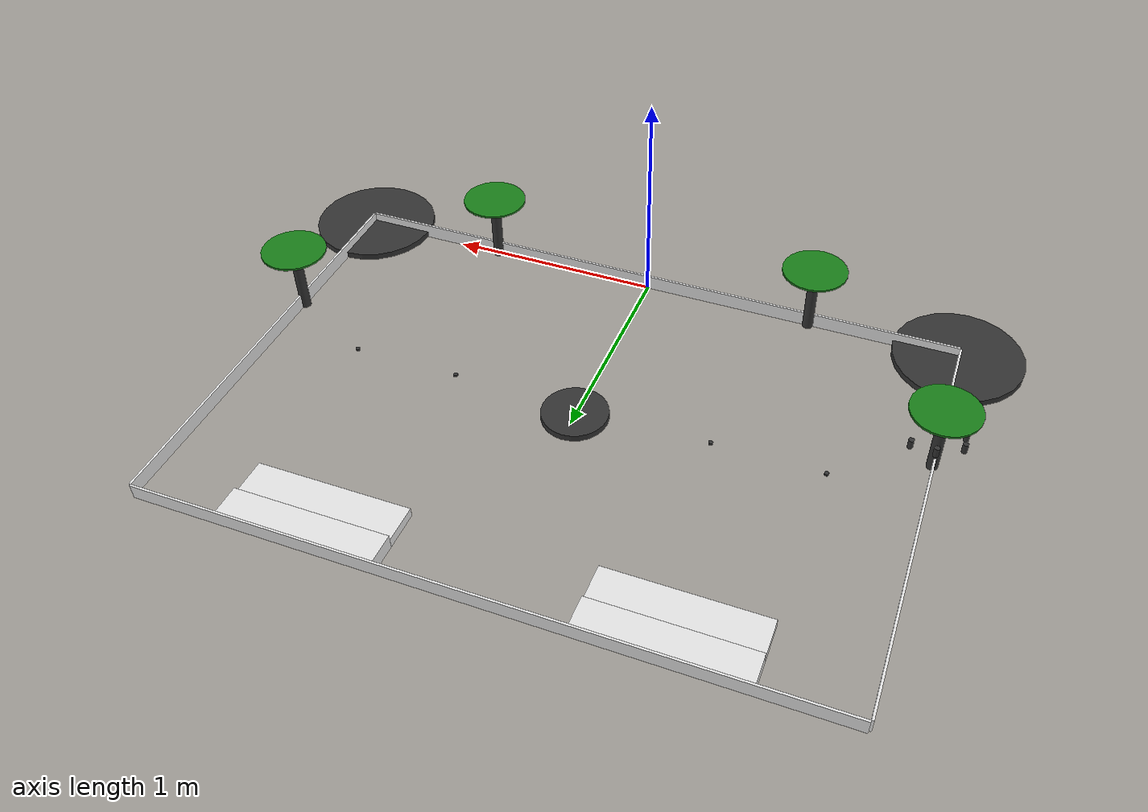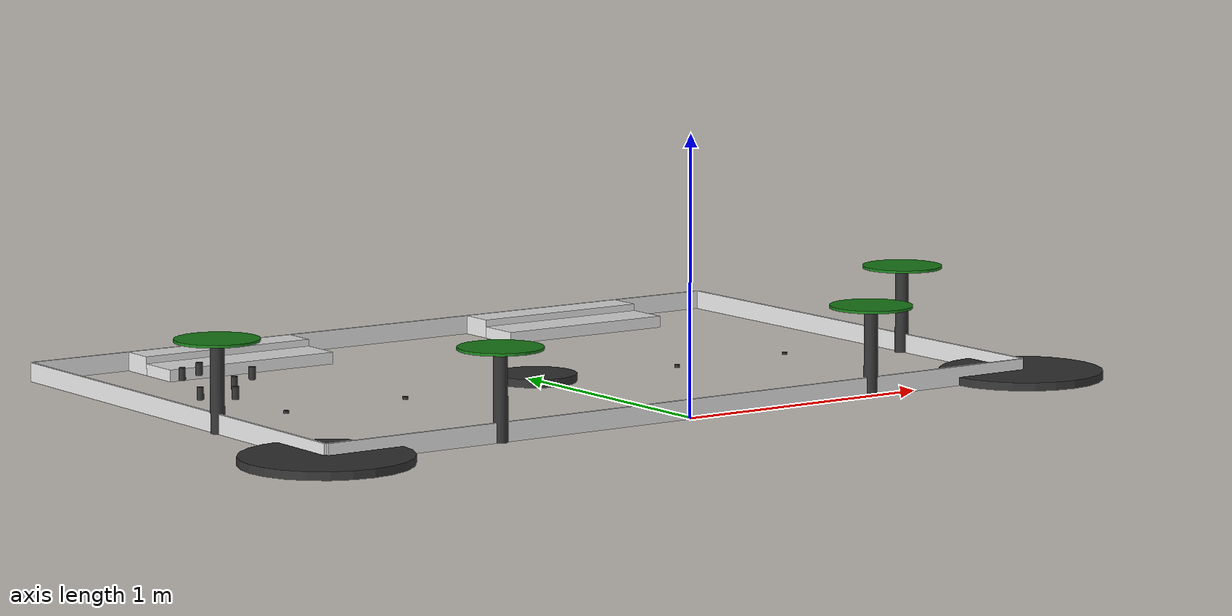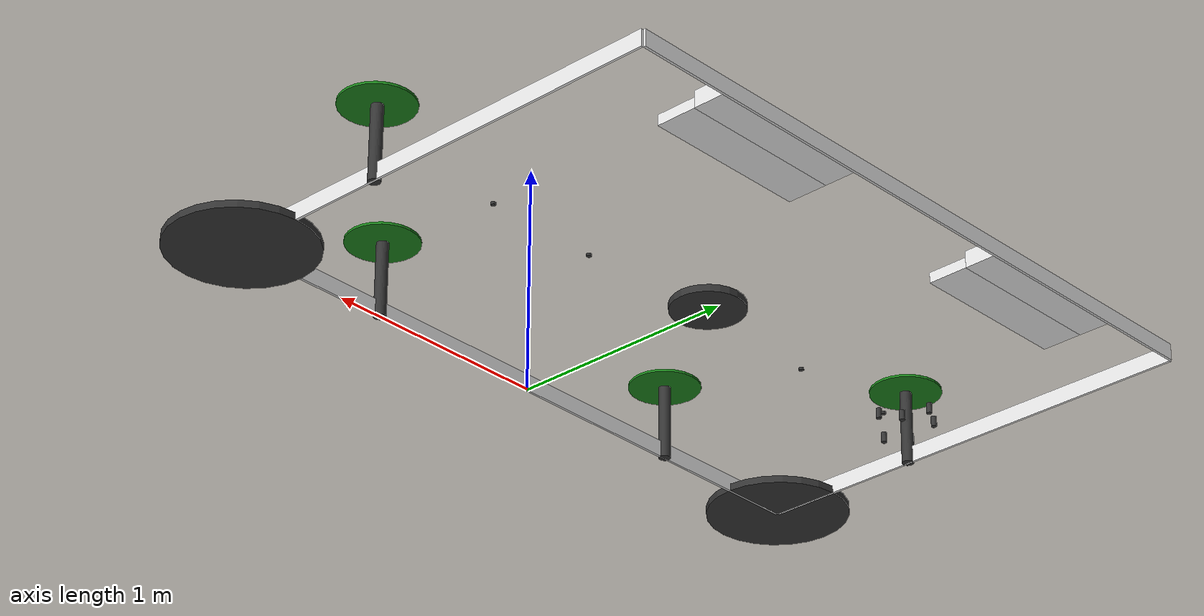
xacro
<?xml version="1.0"?>

<!-- XML namespaces -->
<robot xmlns:sensor="http://playerstage.sourceforge.net/gazebo/xmlschema/#sensor"
       xmlns:controller="http://playerstage.sourceforge.net/gazebo/xmlschema/#controller"
       xmlns:interface="http://playerstage.sourceforge.net/gazebo/xmlschema/#interface"
       xmlns:xacro="http://ros.org/wiki/xacro"
	   name="field2013">

	<xacro:macro name="cyan1">
		<material name="cyan1">
			<color rgba="0 0.9 0.9 1.0"/>
		</material>
	</xacro:macro>

	<xacro:macro name="cyan2">
		<material name="cyan2">
	     <color rgba="0 0.7 0.7 1.0"/>
		</material>
	</xacro:macro>

	<xacro:macro name="cyan3">
		<material name="cyan3">
	     <color rgba="0 0.5 0.5 1.0"/>
		</material>
	</xacro:macro>

	<xacro:macro name="black">
		<material name="black">
			<color rgba="0.1 0.1 0.1 1.0"/>
		</material>
	</xacro:macro>

	<xacro:macro name="black1">
		<material name="black1">
			<color rgba="0.2 0.2 0.2 1.0"/>
		</material>
	</xacro:macro>

	<xacro:macro name="yellow2">
		<material name="yellow2">
			<color rgba="0.8 0.8 0 1.0"/>
		</material>
	</xacro:macro>

	<xacro:macro name="green1">
		<material name="green1">
			<color rgba="0 1 0 1.0"/>
		</material>
	</xacro:macro>

	<xacro:macro name="green2">
		<material name="green2">
			<color rgba="0.1 0.8 0 1.0"/>
		</material>
	</xacro:macro>

	<xacro:macro name="green3">
		<material name="green3">
			<color rgba="0.1 0.5 0.1 1.0"/>
		</material>
	</xacro:macro>

	<xacro:macro name="grey1">
		<material name="grey1">
			<color rgba="0.9 0.9 0.9 1.0"/>
		</material>
	</xacro:macro>

	<xacro:macro name="grey2">
		<material name="grey2">
			<color rgba="0.6 0.6 0.6 1.0"/>
		</material>
	</xacro:macro>

	<xacro:macro name="grey3">
		<material name="grey3">
			<color rgba="0.8 0.8 0.8 1.0"/>
		</material>
	</xacro:macro>

	<xacro:macro name="blue1">
		<material name="blue1">
			<color rgba="0 0 0.9 1.0"/>
		</material>
	</xacro:macro>

	<xacro:macro name="ax12_color">
		<material name="ax12_color">
			<color rgba="0.1 0.1 0.1 1.0"/>
		</material>
	</xacro:macro>

	<xacro:macro name="bracket_color">
		<material name="bracket_color">
			<color rgba="0.9 0.9 0.9 1.0"/>
		</material>
	</xacro:macro>

	<xacro:macro name="ax12" params="name xyz rpy">
		<link name="${name}">
			<visual>
				<origin xyz="${xyz}" rpy="${rpy}" />
				<geometry>
					<box size="0.5 0.32 0.38" />
				</geometry>
				<material name="black1">
					<color rgba="0.2 0.2 0.2 1.0"/>
				</material>
             </visual>
             <collision>
				<origin xyz="${xyz}" rpy="${rpy}" />
					<geometry>
						<box size="0.5 0.32 0.38" />
					</geometry>
             </collision>
             <xacro:default_inertial mass="0.055" />
        </link>
        <xacro:default_gazebo name="${name}" material="Gazebo/FlatBlack" />
	</xacro:macro>

	<xacro:macro name="bracket1" params="name xyz rpy">
		<link name="${name}">
			<visual>
				<origin xyz="${xyz}" rpy="${rpy}" />
				<geometry>
					<box size="0.05 0.025 0.038" />
				</geometry>
				<material name="black1">
					<color rgba="0.2 0.2 0.2 1.0"/>
				</material>
             </visual>
             <collision>
				<origin xyz="${xyz}" rpy="${rpy}" />
					<geometry>
						<box size="0.05 0.025 0.038" />
					</geometry>
             </collision>
             <xacro:default_inertial mass="0.02" />
        </link>
        <xacro:default_gazebo name="${name}" material="Gazebo/WhiteEmissive" />
	</xacro:macro>

	<xacro:macro name="my_box" params="name lwh xyz rpy mass material *rviz_color">
		<link name="${name}">
			<visual>
				<origin xyz="${xyz}" rpy="${rpy}" />
				<geometry>
					<box size="${lwh}" />
				</geometry>
			    <xacro:insert_block name="rviz_color" />
             </visual>
             <collision>
				<origin xyz="${xyz}" rpy="${rpy}" />
					<geometry>
						<box size="${lwh}" />
					</geometry>
             </collision>
             <xacro:default_inertial mass="${mass}" />
        </link>
        <xacro:default_gazebo name="${name}" material="${material}" />
	</xacro:macro>

	<xacro:macro name="my_cylinder" params="name l r xyz rpy mass material *rviz_color">
		<link name="${name}">
			<visual>
				<origin xyz="${xyz}" rpy="${rpy}" />
				<geometry>
					<cylinder length="${l}" radius="${r}" />
				</geometry>
            	<xacro:insert_block name="rviz_color" />
            </visual>
            <collision>
				<origin xyz="${xyz}" rpy="${rpy}" />
					<geometry>
						<cylinder length="${l}" radius="${r}" />
					</geometry>
            </collision>
            <xacro:default_inertial mass="${mass}" />
        </link>
        <xacro:default_gazebo name="${name}" material="${material}" />
	</xacro:macro>

    <xacro:macro name="default_inertial" params="mass">
		<inertial>
			<mass value="${mass}" />
			<inertia ixx="0.001" ixy="0.0" ixz="0.0"
                     iyy="0.001" iyz="0.0"
                     izz="0.001" />
			</inertial>
    </xacro:macro>

    <xacro:macro name="default_gazebo" params="name material">
 		<gazebo reference="${name}">
			<material>${material}</material>
			<selfCollide>false</selfCollide>
			<turnGravityOff>true</turnGravityOff>
		</gazebo>
    </xacro:macro>

	<link name="world" />

        <!-- ============================   Hearts   ============================ -->

    <xacro:my_cylinder name="middle_heart" l="0.03" r="0.15" xyz="0 0 0" rpy="0 0 0" mass="0.1" material="Gazebo/Grey">
    <xacro:black1 />
    </xacro:my_cylinder>

    <xacro:my_cylinder name="left_heart" l="0.03" r="0.3" xyz="0 0 0" rpy="0 0 0" mass="0.1" material="Gazebo/Grey">
    <xacro:black1 />
    </xacro:my_cylinder>

    <xacro:my_cylinder name="right_heart" l="0.03" r="0.3" xyz="0 0 0" rpy="0 0 0" mass="0.1" material="Gazebo/Grey">
    <xacro:black1 />
    </xacro:my_cylinder>

    <!-- ============================   Baskets   ============================ -->

    <xacro:my_box name="RB_basket" lwh="0.700 0.170 0.044" xyz="0 0 0" rpy="0 0 0" mass="0.5" material="Gazebo/FlatBlack">
    <xacro:grey1 />
    </xacro:my_box>

    <xacro:my_box name="LB_basket" lwh="0.700 0.170 0.044" xyz="0 0 0" rpy="0 0 0" mass="0.5" material="Gazebo/FlatBlack">
    <xacro:grey1 />
    </xacro:my_box>

    <xacro:my_box name="RT_basket" lwh="0.700 0.130 0.07" xyz="0 0 0" rpy="0 0 0" mass="0.5" material="Gazebo/FlatBlack">
    <xacro:grey1 />
    </xacro:my_box>

    <xacro:my_box name="LT_basket" lwh="0.700 0.130 0.07" xyz="0 0 0" rpy="0 0 0" mass="0.5" material="Gazebo/FlatBlack">
    <xacro:grey1 />
    </xacro:my_box>

    <!-- ============================   Trees   ============================ -->

    <xacro:my_cylinder name="tree1" l="0.32" r="0.025" xyz="0 0 0" rpy="0 0 0" mass="0.1" material="Gazebo/Grey">
    <xacro:black1 />
    </xacro:my_cylinder>

    <xacro:my_cylinder name="tree1_top" l="0.01" r="0.15" xyz="0 0 0" rpy="0 0 0" mass="0.1" material="Gazebo/Grey">
    <xacro:green3 />
    </xacro:my_cylinder>

    <xacro:my_cylinder name="tree2" l="0.32" r="0.025" xyz="0 0 0" rpy="0 0 0" mass="0.1" material="Gazebo/Grey">
    <xacro:black1 />
    </xacro:my_cylinder>

    <xacro:my_cylinder name="tree2_top" l="0.01" r="0.15" xyz="0 0 0" rpy="0 0 0" mass="0.1" material="Gazebo/Grey">
    <xacro:green3 />
    </xacro:my_cylinder>

    <xacro:my_cylinder name="tree3" l="0.32" r="0.025" xyz="0 0 0" rpy="0 0 0" mass="0.1" material="Gazebo/Grey">
    <xacro:black1 />
    </xacro:my_cylinder>

    <xacro:my_cylinder name="tree3_top" l="0.01" r="0.15" xyz="0 0 0" rpy="0 0 0" mass="0.1" material="Gazebo/Grey">
    <xacro:green3 />
    </xacro:my_cylinder>

    <xacro:my_cylinder name="tree4" l="0.32" r="0.025" xyz="0 0 0" rpy="0 0 0" mass="0.1" material="Gazebo/Grey">
    <xacro:black1 />
    </xacro:my_cylinder>

    <xacro:my_cylinder name="tree4_top" l="0.01" r="0.15" xyz="0 0 0" rpy="0 0 0" mass="0.1" material="Gazebo/Grey">
    <xacro:green3 />
    </xacro:my_cylinder>

    <!-- ============================   Interesting points   ============================ -->

    <xacro:my_cylinder name="inter1" l="0.01" r="0.01" xyz="0 0 0" rpy="0 0 0" mass="0.1" material="Gazebo/Grey">
    <xacro:black1 />
    </xacro:my_cylinder>

    <xacro:my_cylinder name="inter2" l="0.01" r="0.01" xyz="0 0 0" rpy="0 0 0" mass="0.1" material="Gazebo/Grey">
    <xacro:black1 />
    </xacro:my_cylinder>

    <xacro:my_cylinder name="inter3" l="0.01" r="0.01" xyz="0 0 0" rpy="0 0 0" mass="0.1" material="Gazebo/Grey">
    <xacro:black1 />
    </xacro:my_cylinder>

    <xacro:my_cylinder name="inter4" l="0.01" r="0.01" xyz="0 0 0" rpy="0 0 0" mass="0.1" material="Gazebo/Grey">
    <xacro:black1 />
    </xacro:my_cylinder>

    <!-- ============================   Fruits   ============================ -->

    <xacro:my_cylinder name="fruit1" l="0.044" r="0.012" xyz="0 0 0" rpy="0 0 0" mass="0.1" material="Gazebo/Grey">
    <xacro:black1 />
    </xacro:my_cylinder>

    <xacro:my_cylinder name="fruit2" l="0.044" r="0.012" xyz="0 0 0" rpy="0 0 0" mass="0.1" material="Gazebo/Grey">
    <xacro:black1 />
    </xacro:my_cylinder>

    <xacro:my_cylinder name="fruit3" l="0.044" r="0.012" xyz="0 0 0" rpy="0 0 0" mass="0.1" material="Gazebo/Grey">
    <xacro:black1 />
    </xacro:my_cylinder>

    <xacro:my_cylinder name="fruit4" l="0.044" r="0.012" xyz="0 0 0" rpy="0 0 0" mass="0.1" material="Gazebo/Grey">
    <xacro:black1 />
    </xacro:my_cylinder>

    <xacro:my_cylinder name="fruit5" l="0.044" r="0.012" xyz="0 0 0" rpy="0 0 0" mass="0.1" material="Gazebo/Grey">
    <xacro:black1 />
    </xacro:my_cylinder>

    <xacro:my_cylinder name="fruit6" l="0.044" r="0.012" xyz="0 0 0" rpy="0 0 0" mass="0.1" material="Gazebo/Grey">
    <xacro:black1 />
    </xacro:my_cylinder>

    <!-- ============================   Border   ============================ -->

    <xacro:my_box name="up_link" lwh="3.0 0.01 0.07" xyz="0 0 0" rpy="0 0 0" mass="0.5" material="Gazebo/FlatBlack">
    <xacro:grey1 />
    </xacro:my_box>

    <xacro:my_box name="down_link" lwh="3.0 0.01 0.07" xyz="0 0 0" rpy="0 0 0" mass="0.5" material="Gazebo/FlatBlack">
    <xacro:grey1 />
    </xacro:my_box>

    <xacro:my_box name="left_link" lwh="0.01 2.0 0.07" xyz="0 0 0" rpy="0 0 0" mass="0.5" material="Gazebo/FlatBlack">
    <xacro:grey1 />
    </xacro:my_box>

    <xacro:my_box name="right_link" lwh="0.01 2.0 0.07" xyz="0 0 0" rpy="0 0 0" mass="0.5" material="Gazebo/FlatBlack">
    <xacro:grey1 />
    </xacro:my_box>

    <!-- =================== Joint Definitions ==================== -->

    <joint name="middle_heart_joint" type="fixed">
    <parent link="world" />
    <child link="middle_heart" />
    <origin xyz="0.0 0.95 0.015" rpy="0 0 0" />
    </joint>

    <joint name="right_heart_joint" type="fixed">
    <parent link="world" />
    <child link="right_heart" />
    <origin xyz="1.5 0.0 0.015" rpy="0 0 0" />
    </joint>

    <joint name="left_heart_joint" type="fixed">
    <parent link="world" />
    <child link="left_heart" />
    <origin xyz="-1.5 0.0 0.015" rpy="0 0 0" />
    </joint>

    <joint name="RB_basket_joint" type="fixed">
    <parent link="world" />
    <child link="RB_basket" />
    <origin xyz="0.750 1.785 0.022" rpy="0 0 0" />
    </joint>

    <joint name="LB_basket_joint" type="fixed">
    <parent link="world" />
    <child link="LB_basket" />
    <origin xyz="-0.750 1.785 0.022" rpy="0 0 0" />
    </joint>

    <joint name="RT_basket_joint" type="fixed">
    <parent link="world" />
    <child link="RT_basket" />
    <origin xyz="0.750 1.935 0.035" rpy="0 0 0" />
    </joint>

    <joint name="LT_basket_joint" type="fixed">
    <parent link="world" />
    <child link="LT_basket" />
    <origin xyz="-0.750 1.935 0.035" rpy="0 0 0" />
    </joint>

    <joint name="tree1_joint" type="fixed">
    <parent link="world" />
    <child link="tree1" />
    <origin xyz="1.5 0.7 0.16" rpy="0 0 0" />
    </joint>

    <joint name="tree1_top_joint" type="fixed">
    <parent link="world" />
    <child link="tree1_top" />
    <origin xyz="1.5 0.7 0.325" rpy="0 0 0" />
    </joint>

    <joint name="tree2_joint" type="fixed">
    <parent link="world" />
    <child link="tree2" />
    <origin xyz="-1.5 0.7 0.16" rpy="0 0 0" />
    </joint>

    <joint name="tree2_top_joint" type="fixed">
    <parent link="world" />
    <child link="tree2_top" />
    <origin xyz="-1.5 0.7 0.325" rpy="0 0 0" />
    </joint>

    <joint name="tree3_joint" type="fixed">
    <parent link="world" />
    <child link="tree3" />
    <origin xyz="0.8 0.0 0.16" rpy="0 0 0" />
    </joint>

    <joint name="tree3_top_joint" type="fixed">
    <parent link="world" />
    <child link="tree3_top" />
    <origin xyz="0.8 0.0 0.325" rpy="0 0 0" />
    </joint>

    <joint name="tree4_joint" type="fixed">
    <parent link="world" />
    <child link="tree4" />
    <origin xyz="-0.8 0.0 0.16" rpy="0 0 0" />
    </joint>

    <joint name="tree4_top_joint" type="fixed">
    <parent link="world" />
    <child link="tree4_top" />
    <origin xyz="-0.8 0.0 0.325" rpy="0 0 0" />
    </joint>

    <joint name="inter1_joint" type="fixed">
    <parent link="world" />
    <child link="inter1" />
    <origin xyz="0.6 0.9 0.005" rpy="0 0 0" />
    </joint>

    <joint name="inter2_joint" type="fixed">
    <parent link="world" />
    <child link="inter2" />
    <origin xyz="-0.6 0.9 0.005" rpy="0 0 0" />
    </joint>

    <joint name="inter3_joint" type="fixed">
    <parent link="world" />
    <child link="inter3" />
    <origin xyz="1.1 0.9 0.005" rpy="0 0 0" />
    </joint>

    <joint name="inter4_joint" type="fixed">
    <parent link="world" />
    <child link="inter4" />
    <origin xyz="-1.1 0.9 0.005" rpy="0 0 0" />
    </joint>

    <joint name="fruit1_joint" type="fixed">
    <parent link="world" />
    <child link="fruit1" />
    <origin xyz="-1.5 0.580 0.158" rpy="0 0 0" />
    </joint>

    <joint name="fruit2_joint" type="fixed">
    <parent link="world" />
    <child link="fruit2" />
    <origin xyz="-1.5 0.820 0.208" rpy="0 0 0" />
    </joint>

    <joint name="fruit3_joint" type="fixed">
    <parent link="world" />
    <child link="fruit3" />
    <origin xyz="-1.396 0.640 0.208" rpy="0 0 0" />
    </joint>

    <joint name="fruit4_joint" type="fixed">
    <parent link="world" />
    <child link="fruit4" />
    <origin xyz="-1.396 0.760 0.158" rpy="0 0 0" />
    </joint>

    <joint name="fruit5_joint" type="fixed">
    <parent link="world" />
    <child link="fruit5" />
    <origin xyz="-1.604 0.640 0.158" rpy="0 0 0" />
    </joint>

    <joint name="fruit6_joint" type="fixed">
    <parent link="world" />
    <child link="fruit6" />
    <origin xyz="-1.604 0.760 0.208" rpy="0 0 0" />
    </joint>

    <joint name="up_joint" type="fixed">
    <parent link="world" />
    <child link="up_link" />
    <origin xyz="0.0 -0.005 0.035" rpy="0 0 0" />
    </joint>

    <joint name="down_joint" type="fixed">
    <parent link="world" />
    <child link="down_link" />
    <origin xyz="0.0 2.005 0.035" rpy="0 0 0" />
    </joint>

    <joint name="left_joint" type="fixed">
    <parent link="world" />
    <child link="left_link" />
    <origin xyz="-1.505 1.0 0.035" rpy="0 0 0" />
    </joint>

    <joint name="right_joint" type="fixed">
    <parent link="world" />
    <child link="right_link" />
    <origin xyz="1.505 1.0 0.035" rpy="0 0 0" />
    </joint>

    <gazebo reference="field">
    </gazebo>
    </robot>
